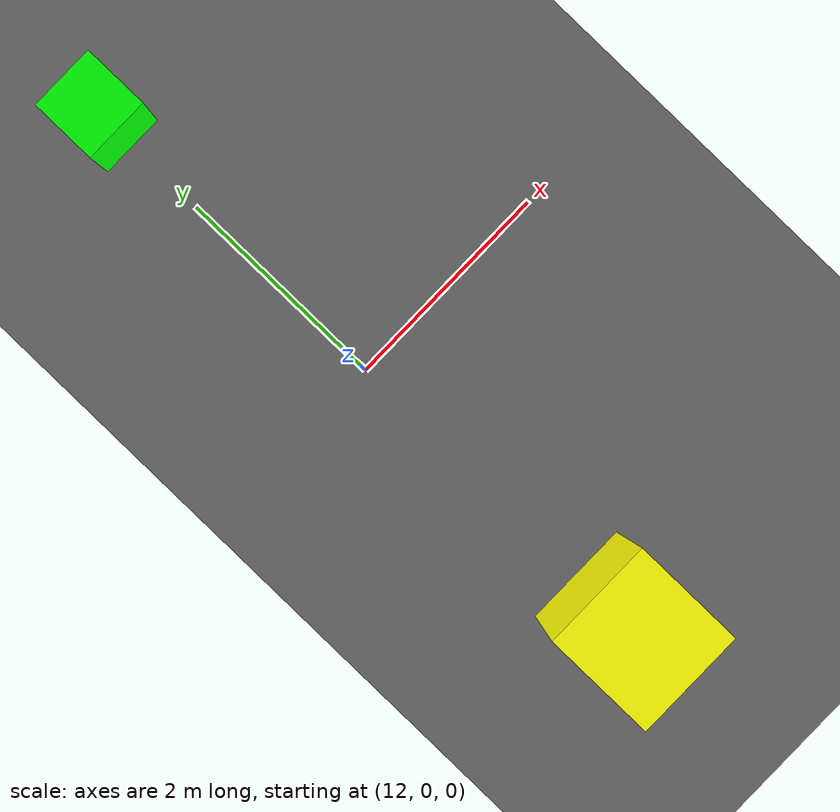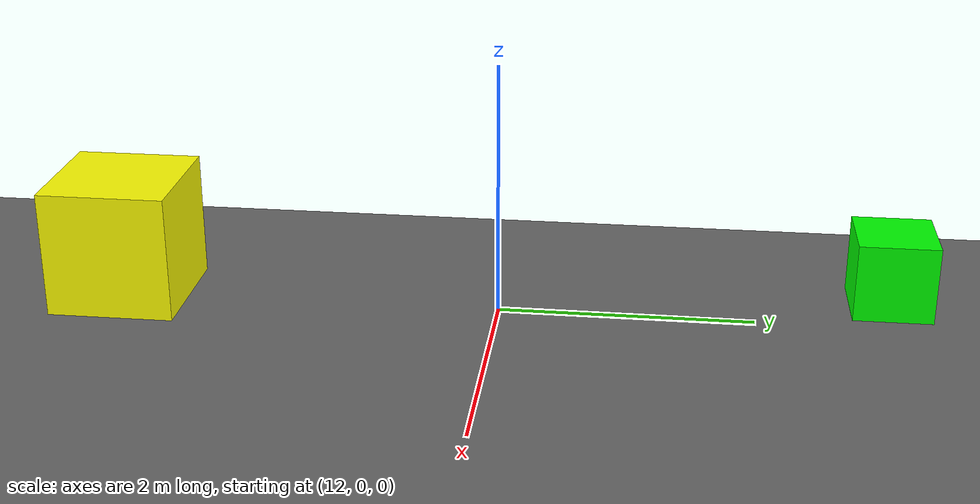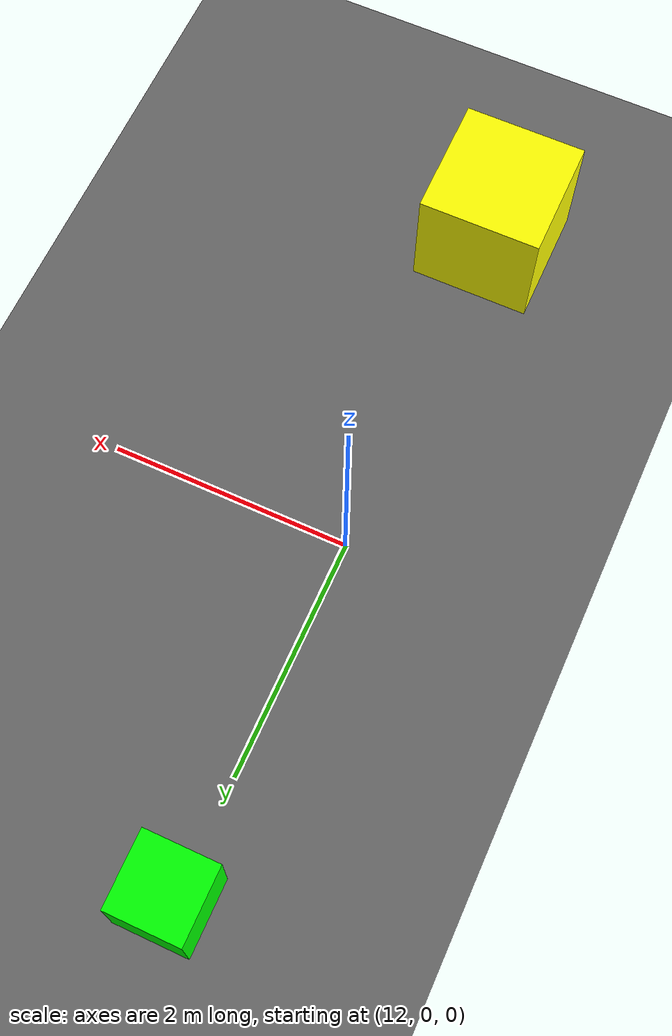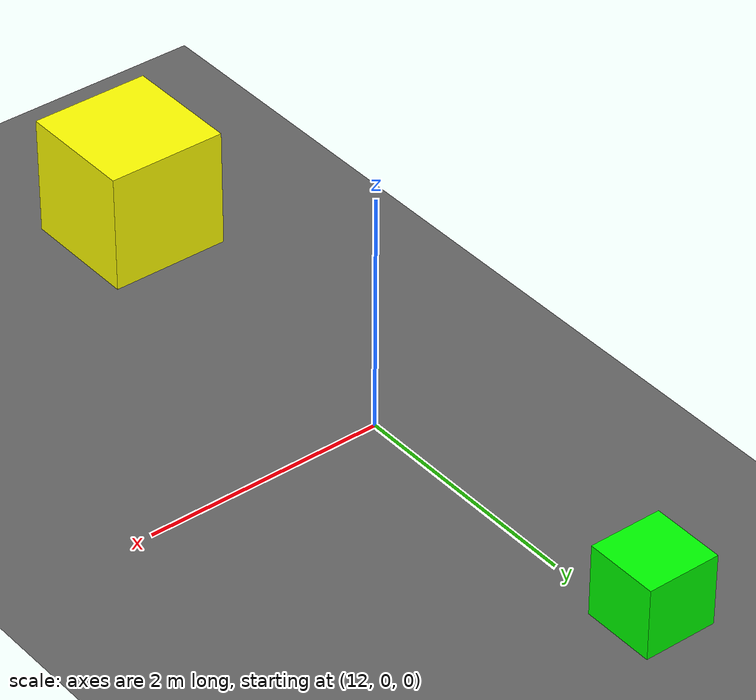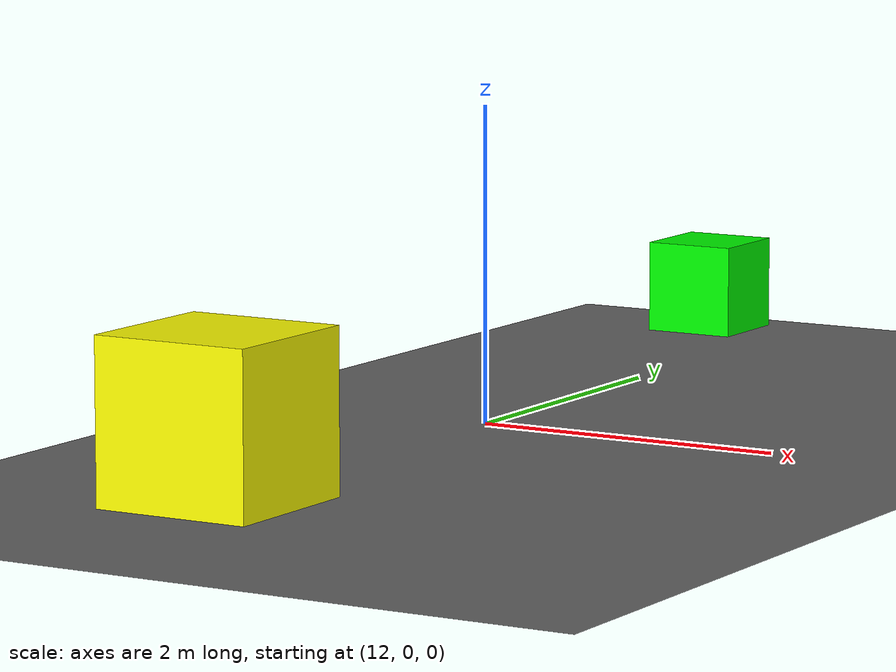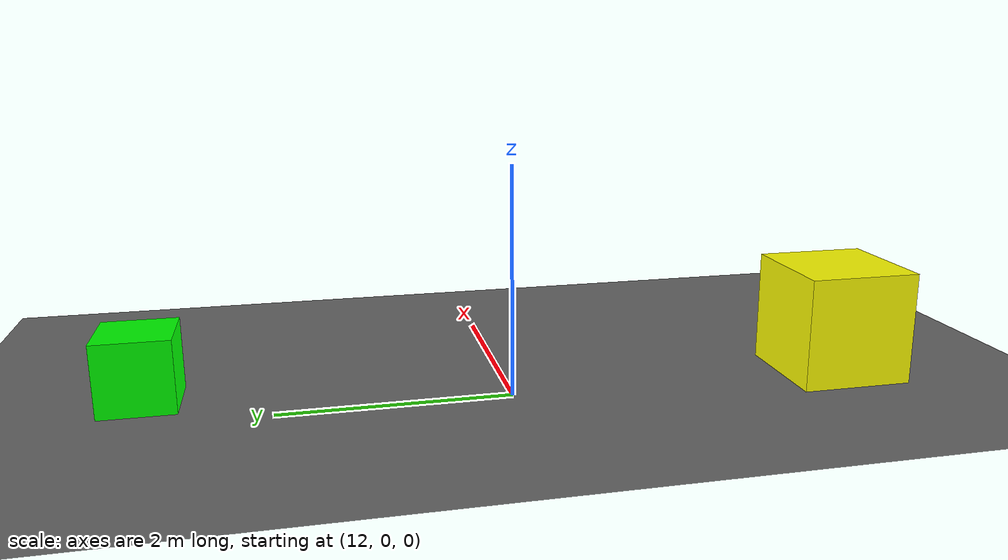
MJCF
<mujoco model="simple_navigation">
    <compiler angle="degree" coordinate="local" inertiafromgeom="true"/>
    <option integrator="RK4" timestep="0.01"/>

    <asset>
        <texture builtin="gradient" height="100" rgb1="0.6 0.8 1" rgb2="0 0 0" type="skybox" width="100"/>
        <texture name="floor_texture" type="2d" builtin="checker" width="100" height="100" rgb1="0 0 0" rgb2="0.8 0.8 0.8"/>
        <material name="MatPlane" reflectance="0.5" shininess="1" specular="1" texrepeat="10 10" texture="floor_texture"/>
    </asset>

    <!-- Excluding the contact between the agent and the goal, and the agent and the floor -->
    <contact>
        <exclude body1="agent" body2="goal"/>
        <exclude body1 = "agent" body2 = "floor"/>
    </contact>

    <extension>
        <plugin plugin = "mujoco.pid">
            <instance name = "pid1">
                <config key="kp" value="2"/>
                <config key="ki" value="0"/>
                <config key="kd" value="55"/>
            </instance>
        </plugin>
    </extension>

    <worldbody>
        <light cutoff="100" diffuse="1 1 1" dir="-0 0 -1.3" directional="true" exponent="1" pos="0 0 1.3" specular=".1 .1 .1"/>
        <body name="floor" pos="0 0 0">
            <geom name="floor_geom" type="plane" size="20 20 0.1" material="MatPlane"/>
        </body>

        <body name="goal" pos="11.0 11.0 0">
            <geom name="goal_geom" type="plane" size="0.5 0.5 1" pos="0 0 0" rgba="1 0 0 1"/>
        </body>

        <body name="agent" pos="12.0 -3.0 0.5">
            <joint name="j1" type="slide" axis ="1 0 0 "/>
            <joint name="j2" type="slide" axis ="0 1 0 "/>
            <geom name="agent_geom" type="box" size="0.5 0.5 0.5" rgba="1 1 0 1"/>
        </body>

        <body name="obstacle1" pos="12.0 3.0 0.5">
            <geom name="obstacle1_geom" type="box" size="0.3 0.3 0.3" rgba="0 1 0 1"/>
        </body>

    </worldbody>

    <sensor>
        <distance name="dist1" geom1="agent_geom" geom2="obstacle1_geom" cutoff="1.5"/>
    </sensor>

    <actuator>
        <plugin joint="j1" plugin="mujoco.pid" instance="pid1" />
        <plugin joint="j2" plugin="mujoco.pid" instance="pid1"/>
    </actuator>
</mujoco>
